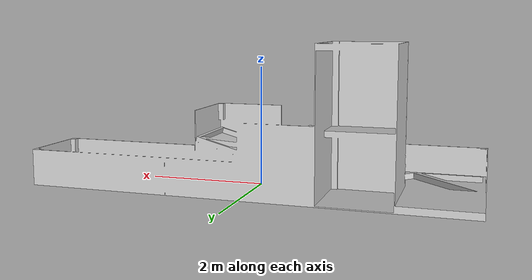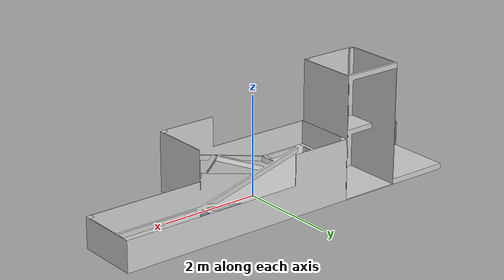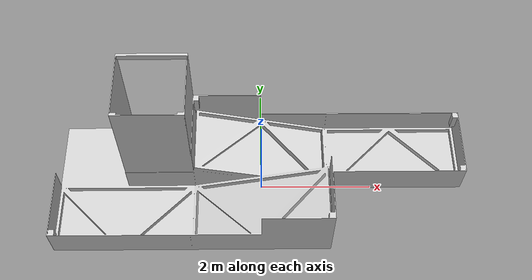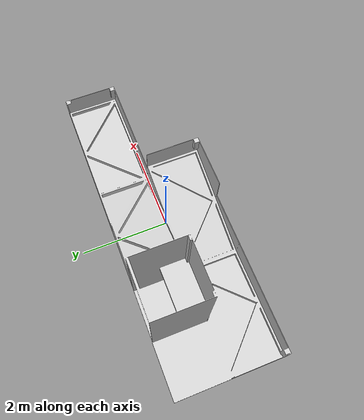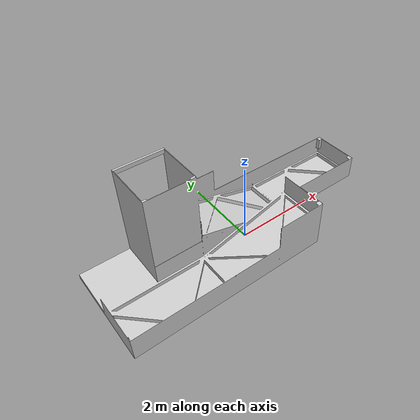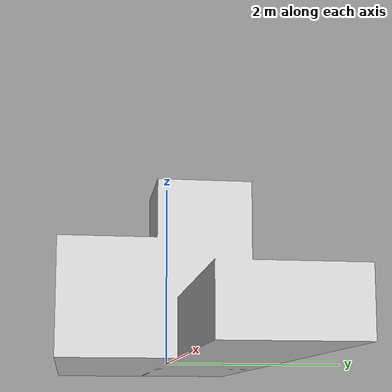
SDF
<?xml version='1.0'?>
<sdf version='1.5'>
  <model name="ter2">
    <static>true</static>
    <pose>0 0 0 0 0 0</pose>
      <!-- ter2  change collision mass ineritia ...-->
      <link name="course">
        <pose>0 0 0 0 0 0</pose>

        <inertial>
          <pose>0 0 0 0 0 0</pose>
          <mass>5.0</mass>
          <inertia>
            <ixx>9.885e-1</ixx>
            <iyy>2.099e0</iyy>
            <izz>1.317e0</izz>
            <ixy>-7.521e-4</ixy>
            <ixz>1.126e-3</ixz>
            <iyz>6.915e-3</iyz>
          </inertia>
        </inertial>
        <visual name="visual">
          <cast_shadows>true</cast_shadows>
          <geometry>
            <mesh>
              <uri>model://TER2/mesh/TER2.dae</uri>
            </mesh>
          </geometry>
          <material>
            <ambient>0.8 0.8 0.8 1</ambient>
            <diffuse>0.8 0.8 0.8 1</diffuse>
            <specular>0.8 0.8 0.8 1</specular>
          </material>
        </visual>
        <collision name="collision">
          <geometry>
            <mesh>
              <uri>model://TER2/mesh/TER2.dae</uri>
            </mesh>
          </geometry>
          <surface>
            <friction>
              <torsional>
                <coefficient>1.0</coefficient>
                <ode>
                  <slip>1.0</slip>
                </ode>
              </torsional>
            </friction>
          </surface>
        </collision>
      </link>

    </model>
</sdf>
